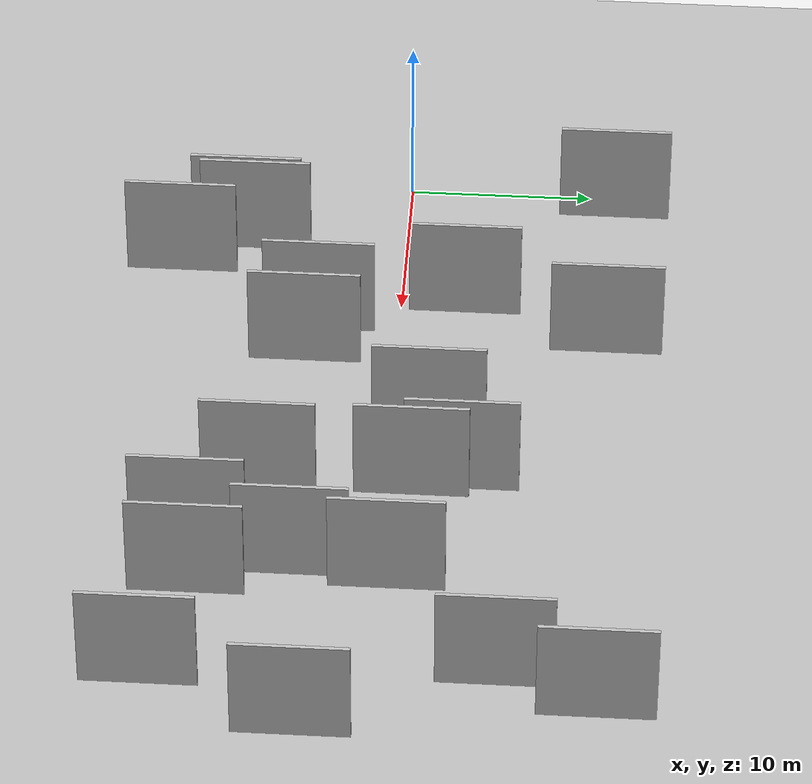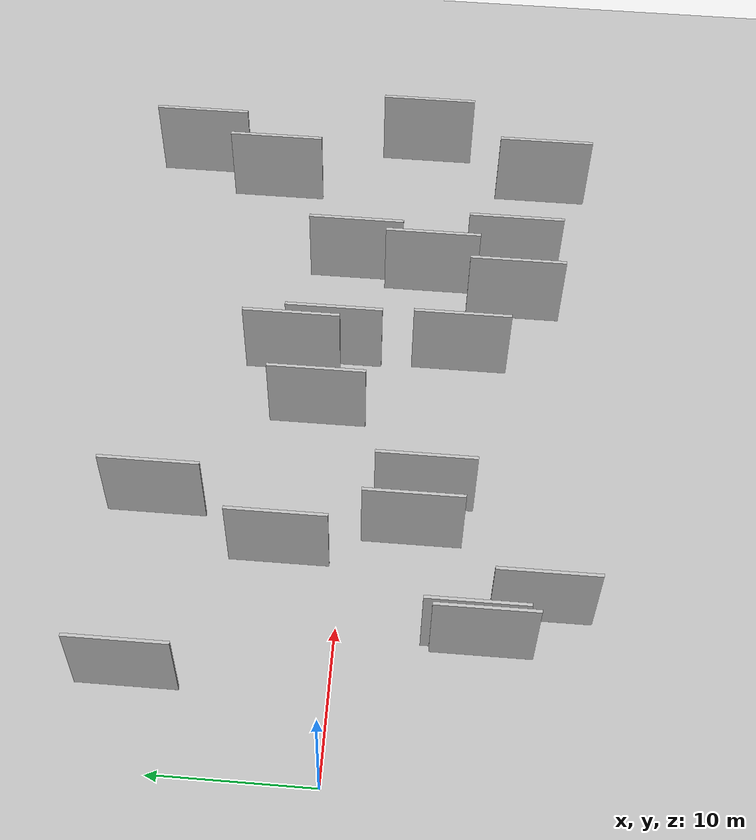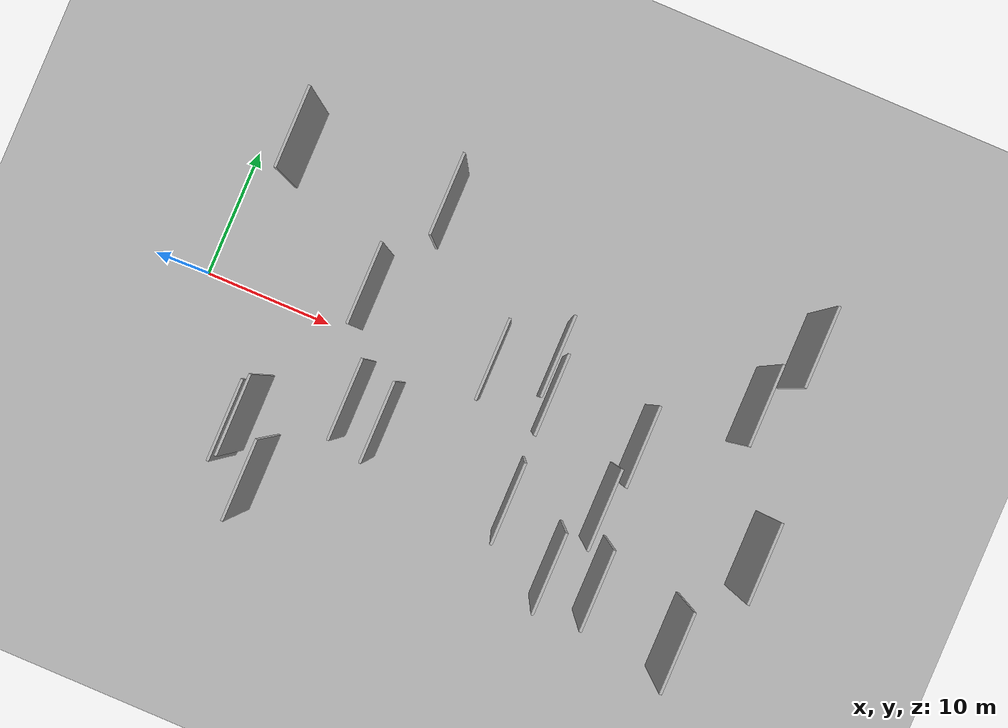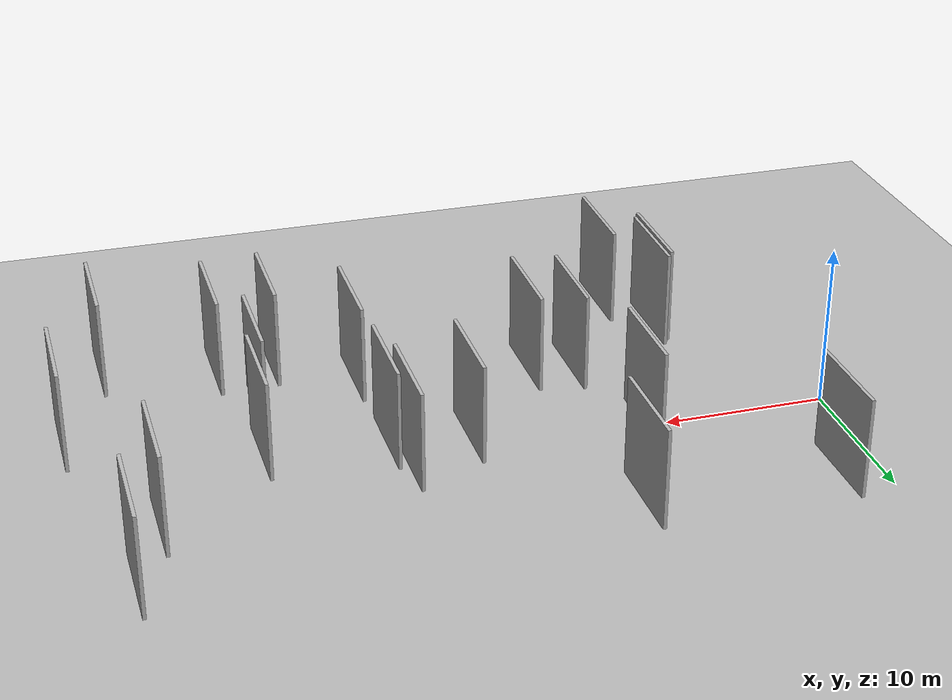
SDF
<?xml version="1.0" encoding="utf-8"?>

<sdf version="1.6">

   <world name="default">

      <gui fullscreen="0">

         <camera name="user_camera">

            <pose>-15 0 4.57585 0 0 0</pose>

            <view_controller>orbit</view_controller>

         </camera>

      </gui>

      <scene>

         <sky>

           <clouds>

             <speed>12</speed>

           </clouds>

         </sky>

         <ambient>0.4 0.4 0.4 1</ambient>

         <background>0.7 0.7 0.7 1</background>

         <shadows>1</shadows>

      </scene>

      <gravity>0 0 -9.8066</gravity>

      <magnetic_field>6e-06 2.3e-05 -4.2e-05</magnetic_field>

      <physics default="0" name="default_physics" type="ode">

         <ode>

            <solver>

               <type>quick</type>

               <iters>10</iters>

               <sor>1.0</sor>

               <use_dynamic_moi_rescaling>0</use_dynamic_moi_rescaling>

            </solver>

            <constraints>

               <cfm>0</cfm>

               <erp>0.2</erp>

               <contact_max_correcting_vel>100</contact_max_correcting_vel>

               <contact_surface_layer>0.001</contact_surface_layer>

            </constraints>

         </ode>

         <max_step_size>0.004</max_step_size>

         <real_time_factor>1</real_time_factor>

         <real_time_update_rate>250</real_time_update_rate>

      </physics>

      <light name="sun" type="directional">

         <cast_shadows>1</cast_shadows>

         <pose>0 0 10 0 0 0</pose>

         <diffuse>0.8 0.8 0.8 1</diffuse>

         <specular>0.2 0.2 0.2 1</specular>

         <attenuation>

            <range>1000</range>

            <constant>0.9</constant>

            <linear>0.01</linear>

            <quadratic>0.001</quadratic>

         </attenuation>

         <direction>-0.5 0.1 -0.9</direction>

      </light>

      <include>

         <name>ground_plane_1</name>

         <uri>model://HANNAS_ground_plane</uri>

         <pose>0 0 0  0 0 0</pose>

      </include>

      <include>

         <name>ground_plane_2</name>

         <uri>model://HANNAS_ground_plane</uri>

         <pose>100 0 0  0 0 0</pose>

      </include>

      <model name="HANNAS_wall_1">

         <static>1</static>

         <pose frame="">17.4375 -4.7015 2.5 0.000000 0.000000 1.570796</pose>

         <link name="link">

            <pose frame="">0 0 3.00 0 0 0</pose>

            <collision name="collision">

               <geometry>

                  <box>

                     <size>6.00 0.2 6.00</size>

                  </box>

               </geometry>

               <max_contacts>10</max_contacts>

               <surface>

                  <contact>

                     <ode/>

                  </contact>

                  <bounce/>

                  <friction>

                     <torsional>

                        <ode/>

                     </torsional>

                     <ode/>

                  </friction>

               </surface>

            </collision>

            <visual name="visual">

               <cast_shadows>0</cast_shadows>

               <geometry>

                  <box>

                     <size>6.00 0.2 6.00</size>

                  </box>

               </geometry>

               <material>

                  <script>

                     <uri>model://HANNAS_wall/materials/scripts</uri>

                     <uri>model://HANNAS_wall/materials/textures</uri>

                     <name>vrc/HANNAS_wall</name>

                  </script>

               </material>

            </visual>

            <self_collide>0</self_collide>

            <enable_wind>0</enable_wind>

            <kinematic>0</kinematic>

         </link>

      </model>

      <model name="HANNAS_wall_2">

         <static>1</static>

         <pose frame="">15.7489 11.3140 2.5 0.000000 0.000000 1.570796</pose>

         <link name="link">

            <pose frame="">0 0 3.00 0 0 0</pose>

            <collision name="collision">

               <geometry>

                  <box>

                     <size>6.00 0.2 6.00</size>

                  </box>

               </geometry>

               <max_contacts>10</max_contacts>

               <surface>

                  <contact>

                     <ode/>

                  </contact>

                  <bounce/>

                  <friction>

                     <torsional>

                        <ode/>

                     </torsional>

                     <ode/>

                  </friction>

               </surface>

            </collision>

            <visual name="visual">

               <cast_shadows>0</cast_shadows>

               <geometry>

                  <box>

                     <size>6.00 0.2 6.00</size>

                  </box>

               </geometry>

               <material>

                  <script>

                     <uri>model://HANNAS_wall/materials/scripts</uri>

                     <uri>model://HANNAS_wall/materials/textures</uri>

                     <name>vrc/HANNAS_wall</name>

                  </script>

               </material>

            </visual>

            <self_collide>0</self_collide>

            <enable_wind>0</enable_wind>

            <kinematic>0</kinematic>

         </link>

      </model>

      <model name="HANNAS_wall_3">

         <static>1</static>

         <pose frame="">27.7376 -6.3030 2.5 0.000000 0.000000 1.570796</pose>

         <link name="link">

            <pose frame="">0 0 3.00 0 0 0</pose>

            <collision name="collision">

               <geometry>

                  <box>

                     <size>6.00 0.2 6.00</size>

                  </box>

               </geometry>

               <max_contacts>10</max_contacts>

               <surface>

                  <contact>

                     <ode/>

                  </contact>

                  <bounce/>

                  <friction>

                     <torsional>

                        <ode/>

                     </torsional>

                     <ode/>

                  </friction>

               </surface>

            </collision>

            <visual name="visual">

               <cast_shadows>0</cast_shadows>

               <geometry>

                  <box>

                     <size>6.00 0.2 6.00</size>

                  </box>

               </geometry>

               <material>

                  <script>

                     <uri>model://HANNAS_wall/materials/scripts</uri>

                     <uri>model://HANNAS_wall/materials/textures</uri>

                     <name>vrc/HANNAS_wall</name>

                  </script>

               </material>

            </visual>

            <self_collide>0</self_collide>

            <enable_wind>0</enable_wind>

            <kinematic>0</kinematic>

         </link>

      </model>

      <model name="HANNAS_wall_4">

         <static>1</static>

         <pose frame="">42.2016 -11.0937 2.5 0.000000 0.000000 1.570796</pose>

         <link name="link">

            <pose frame="">0 0 3.00 0 0 0</pose>

            <collision name="collision">

               <geometry>

                  <box>

                     <size>6.00 0.2 6.00</size>

                  </box>

               </geometry>

               <max_contacts>10</max_contacts>

               <surface>

                  <contact>

                     <ode/>

                  </contact>

                  <bounce/>

                  <friction>

                     <torsional>

                        <ode/>

                     </torsional>

                     <ode/>

                  </friction>

               </surface>

            </collision>

            <visual name="visual">

               <cast_shadows>0</cast_shadows>

               <geometry>

                  <box>

                     <size>6.00 0.2 6.00</size>

                  </box>

               </geometry>

               <material>

                  <script>

                     <uri>model://HANNAS_wall/materials/scripts</uri>

                     <uri>model://HANNAS_wall/materials/textures</uri>

                     <name>vrc/HANNAS_wall</name>

                  </script>

               </material>

            </visual>

            <self_collide>0</self_collide>

            <enable_wind>0</enable_wind>

            <kinematic>0</kinematic>

         </link>

      </model>

      <model name="HANNAS_wall_5">

         <static>1</static>

         <pose frame="">26.9525 4.1872 2.5 0.000000 0.000000 1.570796</pose>

         <link name="link">

            <pose frame="">0 0 3.00 0 0 0</pose>

            <collision name="collision">

               <geometry>

                  <box>

                     <size>6.00 0.2 6.00</size>

                  </box>

               </geometry>

               <max_contacts>10</max_contacts>

               <surface>

                  <contact>

                     <ode/>

                  </contact>

                  <bounce/>

                  <friction>

                     <torsional>

                        <ode/>

                     </torsional>

                     <ode/>

                  </friction>

               </surface>

            </collision>

            <visual name="visual">

               <cast_shadows>0</cast_shadows>

               <geometry>

                  <box>

                     <size>6.00 0.2 6.00</size>

                  </box>

               </geometry>

               <material>

                  <script>

                     <uri>model://HANNAS_wall/materials/scripts</uri>

                     <uri>model://HANNAS_wall/materials/textures</uri>

                     <name>vrc/HANNAS_wall</name>

                  </script>

               </material>

            </visual>

            <self_collide>0</self_collide>

            <enable_wind>0</enable_wind>

            <kinematic>0</kinematic>

         </link>

      </model>

      <model name="HANNAS_wall_6">

         <static>1</static>

         <pose frame="">43.0986 11.7236 2.5 0.000000 0.000000 1.570796</pose>

         <link name="link">

            <pose frame="">0 0 3.00 0 0 0</pose>

            <collision name="collision">

               <geometry>

                  <box>

                     <size>6.00 0.2 6.00</size>

                  </box>

               </geometry>

               <max_contacts>10</max_contacts>

               <surface>

                  <contact>

                     <ode/>

                  </contact>

                  <bounce/>

                  <friction>

                     <torsional>

                        <ode/>

                     </torsional>

                     <ode/>

                  </friction>

               </surface>

            </collision>

            <visual name="visual">

               <cast_shadows>0</cast_shadows>

               <geometry>

                  <box>

                     <size>6.00 0.2 6.00</size>

                  </box>

               </geometry>

               <material>

                  <script>

                     <uri>model://HANNAS_wall/materials/scripts</uri>

                     <uri>model://HANNAS_wall/materials/textures</uri>

                     <name>vrc/HANNAS_wall</name>

                  </script>

               </material>

            </visual>

            <self_collide>0</self_collide>

            <enable_wind>0</enable_wind>

            <kinematic>0</kinematic>

         </link>

      </model>

      <model name="HANNAS_wall_7">

         <static>1</static>

         <pose frame="">10.4127 -11.9285 2.5 0.000000 0.000000 1.570796</pose>

         <link name="link">

            <pose frame="">0 0 3.00 0 0 0</pose>

            <collision name="collision">

               <geometry>

                  <box>

                     <size>6.00 0.2 6.00</size>

                  </box>

               </geometry>

               <max_contacts>10</max_contacts>

               <surface>

                  <contact>

                     <ode/>

                  </contact>

                  <bounce/>

                  <friction>

                     <torsional>

                        <ode/>

                     </torsional>

                     <ode/>

                  </friction>

               </surface>

            </collision>

            <visual name="visual">

               <cast_shadows>0</cast_shadows>

               <geometry>

                  <box>

                     <size>6.00 0.2 6.00</size>

                  </box>

               </geometry>

               <material>

                  <script>

                     <uri>model://HANNAS_wall/materials/scripts</uri>

                     <uri>model://HANNAS_wall/materials/textures</uri>

                     <name>vrc/HANNAS_wall</name>

                  </script>

               </material>

            </visual>

            <self_collide>0</self_collide>

            <enable_wind>0</enable_wind>

            <kinematic>0</kinematic>

         </link>

      </model>

      <model name="HANNAS_wall_8">

         <static>1</static>

         <pose frame="">8.2979 -8.0572 2.5 0.000000 0.000000 1.570796</pose>

         <link name="link">

            <pose frame="">0 0 3.00 0 0 0</pose>

            <collision name="collision">

               <geometry>

                  <box>

                     <size>6.00 0.2 6.00</size>

                  </box>

               </geometry>

               <max_contacts>10</max_contacts>

               <surface>

                  <contact>

                     <ode/>

                  </contact>

                  <bounce/>

                  <friction>

                     <torsional>

                        <ode/>

                     </torsional>

                     <ode/>

                  </friction>

               </surface>

            </collision>

            <visual name="visual">

               <cast_shadows>0</cast_shadows>

               <geometry>

                  <box>

                     <size>6.00 0.2 6.00</size>

                  </box>

               </geometry>

               <material>

                  <script>

                     <uri>model://HANNAS_wall/materials/scripts</uri>

                     <uri>model://HANNAS_wall/materials/textures</uri>

                     <name>vrc/HANNAS_wall</name>

                  </script>

               </material>

            </visual>

            <self_collide>0</self_collide>

            <enable_wind>0</enable_wind>

            <kinematic>0</kinematic>

         </link>

      </model>

      <model name="HANNAS_wall_9">

         <static>1</static>

         <pose frame="">27.5819 1.6180 2.5 0.000000 0.000000 1.570796</pose>

         <link name="link">

            <pose frame="">0 0 3.00 0 0 0</pose>

            <collision name="collision">

               <geometry>

                  <box>

                     <size>6.00 0.2 6.00</size>

                  </box>

               </geometry>

               <max_contacts>10</max_contacts>

               <surface>

                  <contact>

                     <ode/>

                  </contact>

                  <bounce/>

                  <friction>

                     <torsional>

                        <ode/>

                     </torsional>

                     <ode/>

                  </friction>

               </surface>

            </collision>

            <visual name="visual">

               <cast_shadows>0</cast_shadows>

               <geometry>

                  <box>

                     <size>6.00 0.2 6.00</size>

                  </box>

               </geometry>

               <material>

                  <script>

                     <uri>model://HANNAS_wall/materials/scripts</uri>

                     <uri>model://HANNAS_wall/materials/textures</uri>

                     <name>vrc/HANNAS_wall</name>

                  </script>

               </material>

            </visual>

            <self_collide>0</self_collide>

            <enable_wind>0</enable_wind>

            <kinematic>0</kinematic>

         </link>

      </model>

      <model name="HANNAS_wall_10">

         <static>1</static>

         <pose frame="">35.5796 -9.3482 2.5 0.000000 0.000000 1.570796</pose>

         <link name="link">

            <pose frame="">0 0 3.00 0 0 0</pose>

            <collision name="collision">

               <geometry>

                  <box>

                     <size>6.00 0.2 6.00</size>

                  </box>

               </geometry>

               <max_contacts>10</max_contacts>

               <surface>

                  <contact>

                     <ode/>

                  </contact>

                  <bounce/>

                  <friction>

                     <torsional>

                        <ode/>

                     </torsional>

                     <ode/>

                  </friction>

               </surface>

            </collision>

            <visual name="visual">

               <cast_shadows>0</cast_shadows>

               <geometry>

                  <box>

                     <size>6.00 0.2 6.00</size>

                  </box>

               </geometry>

               <material>

                  <script>

                     <uri>model://HANNAS_wall/materials/scripts</uri>

                     <uri>model://HANNAS_wall/materials/textures</uri>

                     <name>vrc/HANNAS_wall</name>

                  </script>

               </material>

            </visual>

            <self_collide>0</self_collide>

            <enable_wind>0</enable_wind>

            <kinematic>0</kinematic>

         </link>

      </model>

      <model name="HANNAS_wall_11">

         <static>1</static>

         <pose frame="">34.6213 0.7953 2.5 0.000000 0.000000 1.570796</pose>

         <link name="link">

            <pose frame="">0 0 3.00 0 0 0</pose>

            <collision name="collision">

               <geometry>

                  <box>

                     <size>6.00 0.2 6.00</size>

                  </box>

               </geometry>

               <max_contacts>10</max_contacts>

               <surface>

                  <contact>

                     <ode/>

                  </contact>

                  <bounce/>

                  <friction>

                     <torsional>

                        <ode/>

                     </torsional>

                     <ode/>

                  </friction>

               </surface>

            </collision>

            <visual name="visual">

               <cast_shadows>0</cast_shadows>

               <geometry>

                  <box>

                     <size>6.00 0.2 6.00</size>

                  </box>

               </geometry>

               <material>

                  <script>

                     <uri>model://HANNAS_wall/materials/scripts</uri>

                     <uri>model://HANNAS_wall/materials/textures</uri>

                     <name>vrc/HANNAS_wall</name>

                  </script>

               </material>

            </visual>

            <self_collide>0</self_collide>

            <enable_wind>0</enable_wind>

            <kinematic>0</kinematic>

         </link>

      </model>

      <model name="HANNAS_wall_12">

         <static>1</static>

         <pose frame="">22.9550 2.2662 2.5 0.000000 0.000000 1.570796</pose>

         <link name="link">

            <pose frame="">0 0 3.00 0 0 0</pose>

            <collision name="collision">

               <geometry>

                  <box>

                     <size>6.00 0.2 6.00</size>

                  </box>

               </geometry>

               <max_contacts>10</max_contacts>

               <surface>

                  <contact>

                     <ode/>

                  </contact>

                  <bounce/>

                  <friction>

                     <torsional>

                        <ode/>

                     </torsional>

                     <ode/>

                  </friction>

               </surface>

            </collision>

            <visual name="visual">

               <cast_shadows>0</cast_shadows>

               <geometry>

                  <box>

                     <size>6.00 0.2 6.00</size>

                  </box>

               </geometry>

               <material>

                  <script>

                     <uri>model://HANNAS_wall/materials/scripts</uri>

                     <uri>model://HANNAS_wall/materials/textures</uri>

                     <name>vrc/HANNAS_wall</name>

                  </script>

               </material>

            </visual>

            <self_collide>0</self_collide>

            <enable_wind>0</enable_wind>

            <kinematic>0</kinematic>

         </link>

      </model>

      <model name="HANNAS_wall_13">

         <static>1</static>

         <pose frame="">45.2781 -3.2357 2.5 0.000000 0.000000 1.570796</pose>

         <link name="link">

            <pose frame="">0 0 3.00 0 0 0</pose>

            <collision name="collision">

               <geometry>

                  <box>

                     <size>6.00 0.2 6.00</size>

                  </box>

               </geometry>

               <max_contacts>10</max_contacts>

               <surface>

                  <contact>

                     <ode/>

                  </contact>

                  <bounce/>

                  <friction>

                     <torsional>

                        <ode/>

                     </torsional>

                     <ode/>

                  </friction>

               </surface>

            </collision>

            <visual name="visual">

               <cast_shadows>0</cast_shadows>

               <geometry>

                  <box>

                     <size>6.00 0.2 6.00</size>

                  </box>

               </geometry>

               <material>

                  <script>

                     <uri>model://HANNAS_wall/materials/scripts</uri>

                     <uri>model://HANNAS_wall/materials/textures</uri>

                     <name>vrc/HANNAS_wall</name>

                  </script>

               </material>

            </visual>

            <self_collide>0</self_collide>

            <enable_wind>0</enable_wind>

            <kinematic>0</kinematic>

         </link>

      </model>

      <model name="HANNAS_wall_14">

         <static>1</static>

         <pose frame="">14.8446 -4.1291 2.5 0.000000 0.000000 1.570796</pose>

         <link name="link">

            <pose frame="">0 0 3.00 0 0 0</pose>

            <collision name="collision">

               <geometry>

                  <box>

                     <size>6.00 0.2 6.00</size>

                  </box>

               </geometry>

               <max_contacts>10</max_contacts>

               <surface>

                  <contact>

                     <ode/>

                  </contact>

                  <bounce/>

                  <friction>

                     <torsional>

                        <ode/>

                     </torsional>

                     <ode/>

                  </friction>

               </surface>

            </collision>

            <visual name="visual">

               <cast_shadows>0</cast_shadows>

               <geometry>

                  <box>

                     <size>6.00 0.2 6.00</size>

                  </box>

               </geometry>

               <material>

                  <script>

                     <uri>model://HANNAS_wall/materials/scripts</uri>

                     <uri>model://HANNAS_wall/materials/textures</uri>

                     <name>vrc/HANNAS_wall</name>

                  </script>

               </material>

            </visual>

            <self_collide>0</self_collide>

            <enable_wind>0</enable_wind>

            <kinematic>0</kinematic>

         </link>

      </model>

      <model name="HANNAS_wall_15">

         <static>1</static>

         <pose frame="">41.1762 6.6184 2.5 0.000000 0.000000 1.570796</pose>

         <link name="link">

            <pose frame="">0 0 3.00 0 0 0</pose>

            <collision name="collision">

               <geometry>

                  <box>

                     <size>6.00 0.2 6.00</size>

                  </box>

               </geometry>

               <max_contacts>10</max_contacts>

               <surface>

                  <contact>

                     <ode/>

                  </contact>

                  <bounce/>

                  <friction>

                     <torsional>

                        <ode/>

                     </torsional>

                     <ode/>

                  </friction>

               </surface>

            </collision>

            <visual name="visual">

               <cast_shadows>0</cast_shadows>

               <geometry>

                  <box>

                     <size>6.00 0.2 6.00</size>

                  </box>

               </geometry>

               <material>

                  <script>

                     <uri>model://HANNAS_wall/materials/scripts</uri>

                     <uri>model://HANNAS_wall/materials/textures</uri>

                     <name>vrc/HANNAS_wall</name>

                  </script>

               </material>

            </visual>

            <self_collide>0</self_collide>

            <enable_wind>0</enable_wind>

            <kinematic>0</kinematic>

         </link>

      </model>

      <model name="HANNAS_wall_16">

         <static>1</static>

         <pose frame="">12.9620 3.6148 2.5 0.000000 0.000000 1.570796</pose>

         <link name="link">

            <pose frame="">0 0 3.00 0 0 0</pose>

            <collision name="collision">

               <geometry>

                  <box>

                     <size>6.00 0.2 6.00</size>

                  </box>

               </geometry>

               <max_contacts>10</max_contacts>

               <surface>

                  <contact>

                     <ode/>

                  </contact>

                  <bounce/>

                  <friction>

                     <torsional>

                        <ode/>

                     </torsional>

                     <ode/>

                  </friction>

               </surface>

            </collision>

            <visual name="visual">

               <cast_shadows>0</cast_shadows>

               <geometry>

                  <box>

                     <size>6.00 0.2 6.00</size>

                  </box>

               </geometry>

               <material>

                  <script>

                     <uri>model://HANNAS_wall/materials/scripts</uri>

                     <uri>model://HANNAS_wall/materials/textures</uri>

                     <name>vrc/HANNAS_wall</name>

                  </script>

               </material>

            </visual>

            <self_collide>0</self_collide>

            <enable_wind>0</enable_wind>

            <kinematic>0</kinematic>

         </link>

      </model>

      <model name="HANNAS_wall_17">

         <static>1</static>

         <pose frame="">4.3700 11.4028 2.5 0.000000 0.000000 1.570796</pose>

         <link name="link">

            <pose frame="">0 0 3.00 0 0 0</pose>

            <collision name="collision">

               <geometry>

                  <box>

                     <size>6.00 0.2 6.00</size>

                  </box>

               </geometry>

               <max_contacts>10</max_contacts>

               <surface>

                  <contact>

                     <ode/>

                  </contact>

                  <bounce/>

                  <friction>

                     <torsional>

                        <ode/>

                     </torsional>

                     <ode/>

                  </friction>

               </surface>

            </collision>

            <visual name="visual">

               <cast_shadows>0</cast_shadows>

               <geometry>

                  <box>

                     <size>6.00 0.2 6.00</size>

                  </box>

               </geometry>

               <material>

                  <script>

                     <uri>model://HANNAS_wall/materials/scripts</uri>

                     <uri>model://HANNAS_wall/materials/textures</uri>

                     <name>vrc/HANNAS_wall</name>

                  </script>

               </material>

            </visual>

            <self_collide>0</self_collide>

            <enable_wind>0</enable_wind>

            <kinematic>0</kinematic>

         </link>

      </model>

      <model name="HANNAS_wall_18">

         <static>1</static>

         <pose frame="">7.9361 -8.5827 2.5 0.000000 0.000000 1.570796</pose>

         <link name="link">

            <pose frame="">0 0 3.00 0 0 0</pose>

            <collision name="collision">

               <geometry>

                  <box>

                     <size>6.00 0.2 6.00</size>

                  </box>

               </geometry>

               <max_contacts>10</max_contacts>

               <surface>

                  <contact>

                     <ode/>

                  </contact>

                  <bounce/>

                  <friction>

                     <torsional>

                        <ode/>

                     </torsional>

                     <ode/>

                  </friction>

               </surface>

            </collision>

            <visual name="visual">

               <cast_shadows>0</cast_shadows>

               <geometry>

                  <box>

                     <size>6.00 0.2 6.00</size>

                  </box>

               </geometry>

               <material>

                  <script>

                     <uri>model://HANNAS_wall/materials/scripts</uri>

                     <uri>model://HANNAS_wall/materials/textures</uri>

                     <name>vrc/HANNAS_wall</name>

                  </script>

               </material>

            </visual>

            <self_collide>0</self_collide>

            <enable_wind>0</enable_wind>

            <kinematic>0</kinematic>

         </link>

      </model>

      <model name="HANNAS_wall_19">

         <static>1</static>

         <pose frame="">33.9229 -4.1304 2.5 0.000000 0.000000 1.570796</pose>

         <link name="link">

            <pose frame="">0 0 3.00 0 0 0</pose>

            <collision name="collision">

               <geometry>

                  <box>

                     <size>6.00 0.2 6.00</size>

                  </box>

               </geometry>

               <max_contacts>10</max_contacts>

               <surface>

                  <contact>

                     <ode/>

                  </contact>

                  <bounce/>

                  <friction>

                     <torsional>

                        <ode/>

                     </torsional>

                     <ode/>

                  </friction>

               </surface>

            </collision>

            <visual name="visual">

               <cast_shadows>0</cast_shadows>

               <geometry>

                  <box>

                     <size>6.00 0.2 6.00</size>

                  </box>

               </geometry>

               <material>

                  <script>

                     <uri>model://HANNAS_wall/materials/scripts</uri>

                     <uri>model://HANNAS_wall/materials/textures</uri>

                     <name>vrc/HANNAS_wall</name>

                  </script>

               </material>

            </visual>

            <self_collide>0</self_collide>

            <enable_wind>0</enable_wind>

            <kinematic>0</kinematic>

         </link>

      </model>

      <model name="HANNAS_wall_20">

         <static>1</static>

         <pose frame="">32.1508 -9.5584 2.5 0.000000 0.000000 1.570796</pose>

         <link name="link">

            <pose frame="">0 0 3.00 0 0 0</pose>

            <collision name="collision">

               <geometry>

                  <box>

                     <size>6.00 0.2 6.00</size>

                  </box>

               </geometry>

               <max_contacts>10</max_contacts>

               <surface>

                  <contact>

                     <ode/>

                  </contact>

                  <bounce/>

                  <friction>

                     <torsional>

                        <ode/>

                     </torsional>

                     <ode/>

                  </friction>

               </surface>

            </collision>

            <visual name="visual">

               <cast_shadows>0</cast_shadows>

               <geometry>

                  <box>

                     <size>6.00 0.2 6.00</size>

                  </box>

               </geometry>

               <material>

                  <script>

                     <uri>model://HANNAS_wall/materials/scripts</uri>

                     <uri>model://HANNAS_wall/materials/textures</uri>

                     <name>vrc/HANNAS_wall</name>

                  </script>

               </material>

            </visual>

            <self_collide>0</self_collide>

            <enable_wind>0</enable_wind>

            <kinematic>0</kinematic>

         </link>

      </model>

   </world>

</sdf>

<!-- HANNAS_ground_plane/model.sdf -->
<sdf version="1.4">
<model name="HANNAS_ground_plane">
  <static>true</static>
    <link name="link">
      <collision name="collision">
        <geometry>
          <plane>
            <normal>0 0 1</normal>
            <size>1000 1000</size>
          </plane>
        </geometry>
        <surface>
          <friction>
            <ode>
              <mu>100</mu>
              <mu2>50</mu2>
            </ode>
          </friction>
        </surface>
      </collision>
      <visual name="visual">
        <cast_shadows>false</cast_shadows>
        <geometry>
          <plane>
            <normal>0 0 1</normal>
            <size>1000 1000</size>
          </plane>
        </geometry>
        <material>
          <script>
            <uri>model://HANNAS_ground_plane/materials/scripts/HANNAS_ground_plane.material</uri>
	    <uri>model://HANNAS_ground_plane/materials/textures</uri>
            <name>HANNASGroundPlane/Image</name>
          </script>
        </material>
      </visual>
    </link>
  </model>
</sdf>
